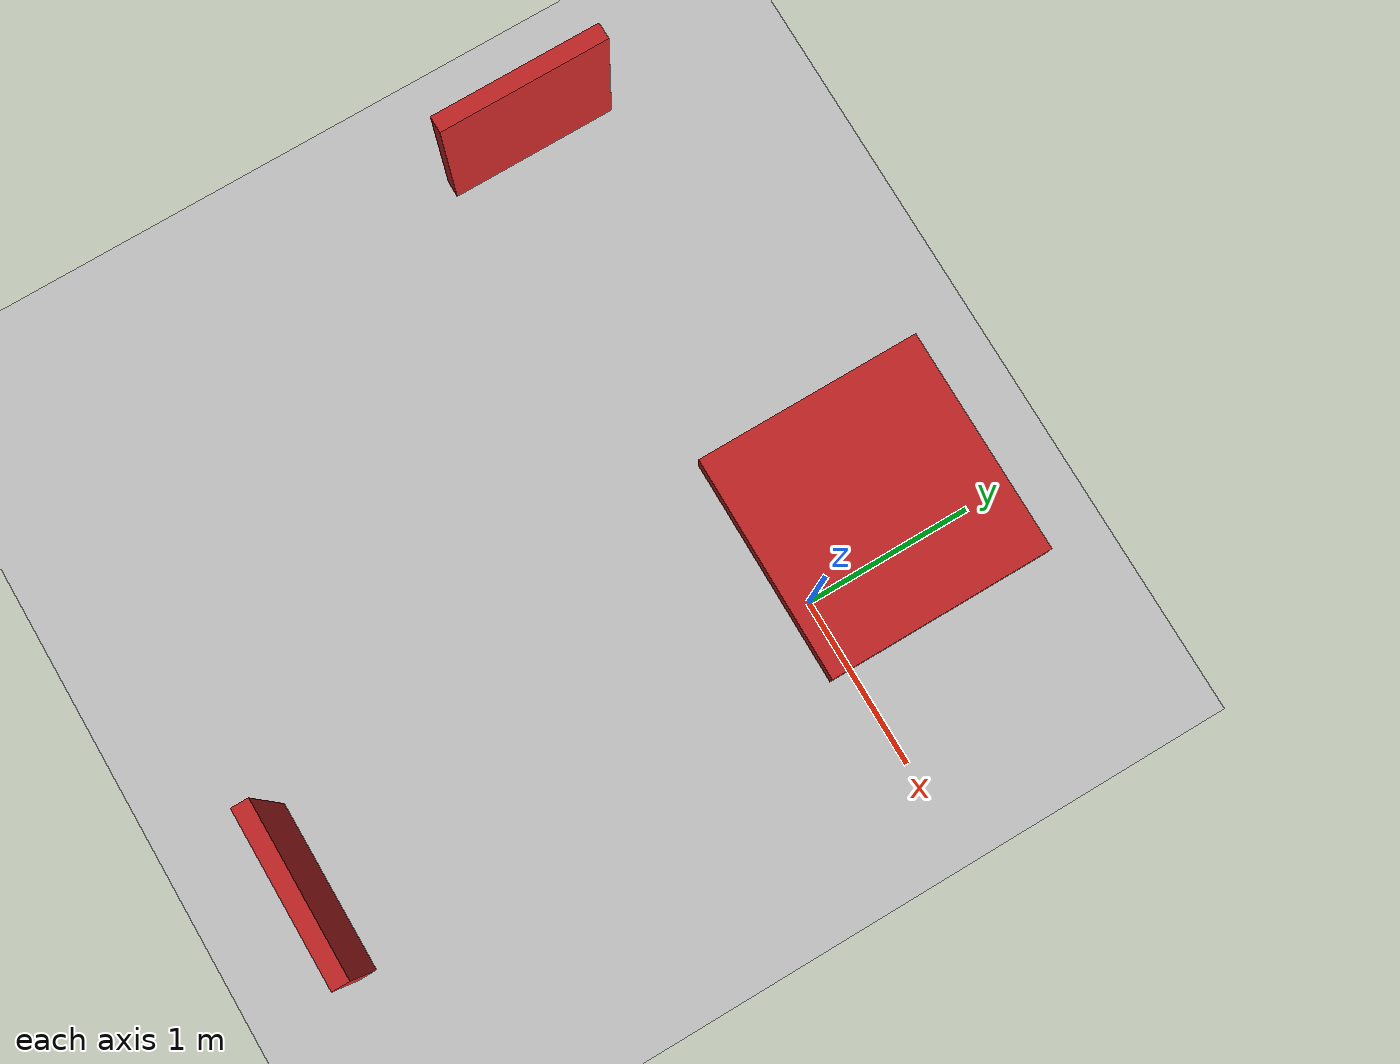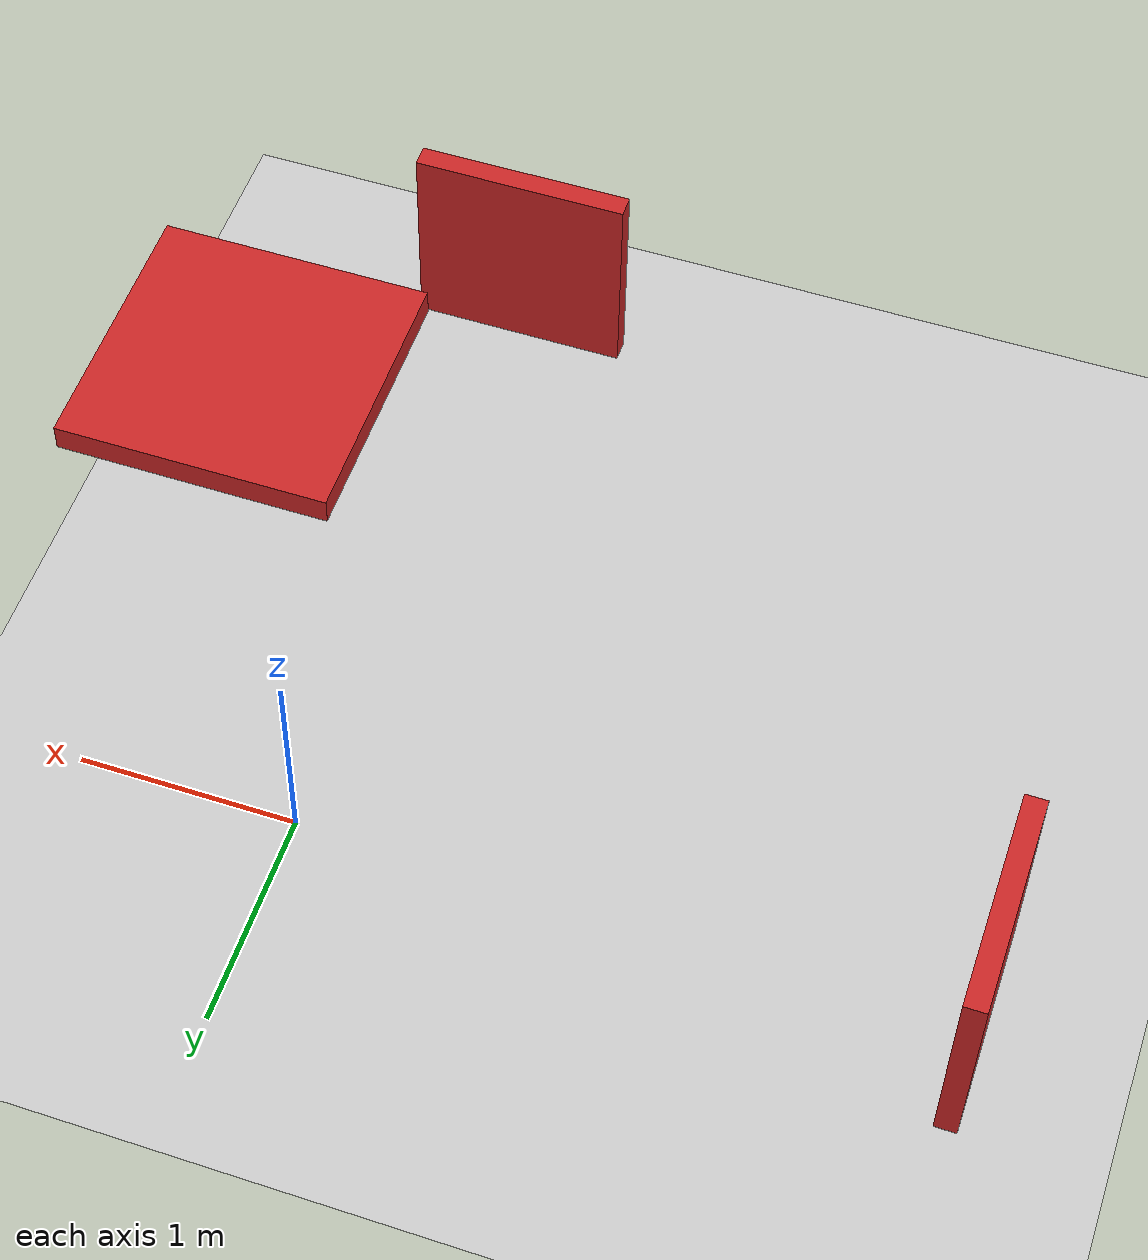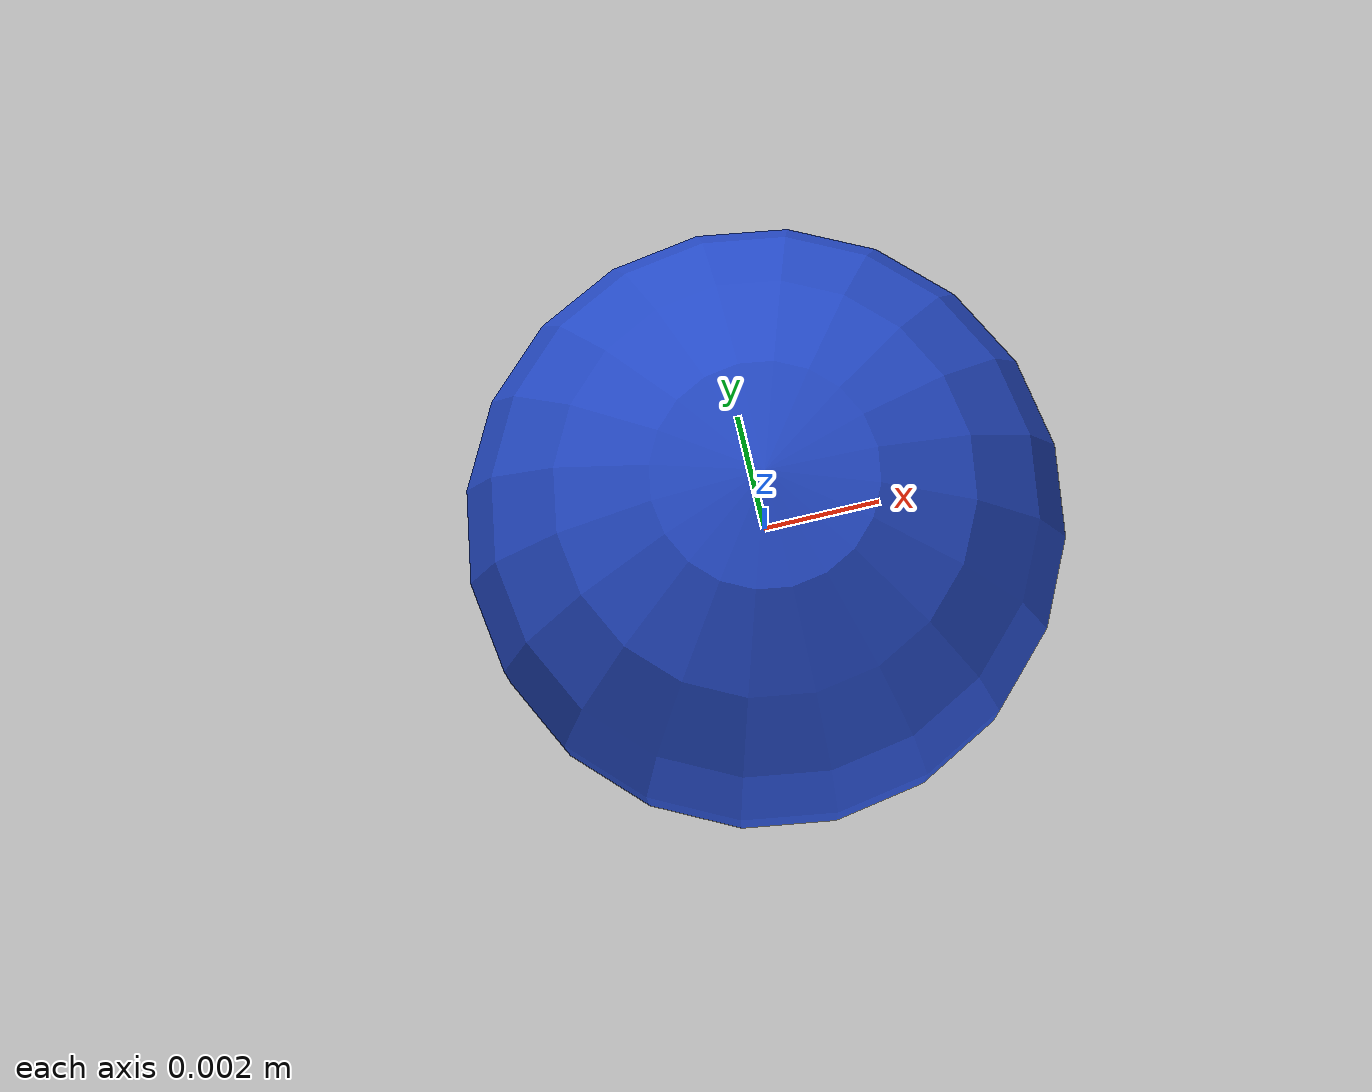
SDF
<?xml version="1.0" ?>
<sdf version="1.4">
  <world name="default">
    <include>
      <uri>model://ground_plane</uri>
    </include>

    <include>
      <uri>model://ground_plane</uri>
    </include>

    <include>
      <uri>model://particle_sphere</uri>
      <name>particle_sphere1</name>
      <pose>0 0 0 0 0 0</pose>
    </include>

    <include>
      <uri>model://particle_sphere</uri>
      <name>particle_sphere2</name>
      <pose>0 0 0 0 0 0</pose>
    </include>

    <include>
      <uri>model://particle_sphere</uri>
      <name>particle_sphere3</name>
      <pose>0 0 0 0 0 0</pose>
    </include>

    <include>
      <uri>model://particle_sphere</uri>
      <name>particle_sphere4</name>
      <pose>0 0 0 0 0 0</pose>
    </include>

    <include>
      <uri>model://particle_sphere</uri>
      <name>particle_sphere5</name>
      <pose>0 0 0 0 0 0</pose>
    </include>

    <include>
      <uri>model://particle_sphere</uri>
      <name>particle_sphere6</name>
      <pose>0 0 0 0 0 0</pose>
    </include>

    <include>
      <uri>model://particle_sphere</uri>
      <name>particle_sphere7</name>
      <pose>0 0 0 0 0 0</pose>
    </include>

    <include>
      <uri>model://particle_sphere</uri>
      <name>particle_sphere8</name>
      <pose>0 0 0 0 0 0</pose>
    </include>

    <include>
      <uri>model://particle_sphere</uri>
      <name>particle_sphere9</name>
      <pose>0 0 0 0 0 0</pose>
    </include>

    <include>
      <uri>model://particle_sphere</uri>
      <name>particle_sphere10</name>
      <pose>0 0 0 0 0 0</pose>
    </include>

    <include>
      <uri>model://particle_sphere</uri>
      <name>particle_sphere11</name>
      <pose>0 0 0 0 0 0</pose>
    </include>

    <include>
      <uri>model://particle_sphere</uri>
      <name>particle_sphere12</name>
      <pose>0 0 0 0 0 0</pose>
    </include>

        <include>
      <uri>model://particle_sphere</uri>
      <name>particle_sphere13</name>
      <pose>0 0 0 0 0 0</pose>
    </include>

    <include>
      <uri>model://particle_sphere</uri>
      <name>particle_sphere14</name>
      <pose>0 0 0 0 0 0</pose>
    </include>

    <include>
      <uri>model://particle_sphere</uri>
      <name>particle_sphere15</name>
      <pose>0 0 0 0 0 0</pose>
    </include>

    <include>
      <uri>model://particle_sphere</uri>
      <name>particle_sphere16</name>
      <pose>0 0 0 0 0 0</pose>
    </include>

    <include>
      <uri>model://particle_sphere</uri>
      <name>particle_sphere17</name>
      <pose>0 0 0 0 0 0</pose>
    </include>

    <include>
      <uri>model://particle_sphere</uri>
      <name>particle_sphere18</name>
      <pose>0 0 0 0 0 0</pose>
    </include>

    <include>
      <uri>model://particle_sphere</uri>
      <name>particle_sphere19</name>
      <pose>0 0 0 0 0 0</pose>
    </include>

    <include>
      <uri>model://particle_sphere</uri>
      <name>particle_sphere20</name>
      <pose>0 0 0 0 0 0</pose>
    </include>

    <include>
      <uri>model://particle_sphere</uri>
      <name>particle_sphere21</name>
      <pose>0 0 0 0 0 0</pose>
    </include>

    <include>
      <uri>model://particle_sphere</uri>
      <name>particle_sphere22</name>
      <pose>0 0 0 0 0 0</pose>
    </include>

    <include>
      <uri>model://particle_sphere</uri>
      <name>particle_sphere23</name>
      <pose>0 0 0 0 0 0</pose>
    </include>

    <include>
      <uri>model://particle_sphere</uri>
      <name>particle_sphere24</name>
      <pose>0 0 0 0 0 0</pose>
    </include>

        <include>
      <uri>model://particle_sphere</uri>
      <name>particle_sphere25</name>
      <pose>0 0 0 0 0 0</pose>
    </include>

    <include>
      <uri>model://particle_sphere</uri>
      <name>particle_sphere26</name>
      <pose>0 0 0 0 0 0</pose>
    </include>

    <include>
      <uri>model://particle_sphere</uri>
      <name>particle_sphere27</name>
      <pose>0 0 0 0 0 0</pose>
    </include>

    <include>
      <uri>model://particle_sphere</uri>
      <name>particle_sphere28</name>
      <pose>0 0 0 0 0 0</pose>
    </include>

    <include>
      <uri>model://particle_sphere</uri>
      <name>particle_sphere29</name>
      <pose>0 0 0 0 0 0</pose>
    </include>

    <include>
      <uri>model://particle_sphere</uri>
      <name>particle_sphere30</name>
      <pose>0 0 0 0 0 0</pose>
    </include>

    <include>
      <uri>model://particle_sphere</uri>
      <name>particle_sphere31</name>
      <pose>0 0 0 0 0 0</pose>
    </include>

    <include>
      <uri>model://particle_sphere</uri>
      <name>particle_sphere32</name>
      <pose>0 0 0 0 0 0</pose>
    </include>

    <include>
      <uri>model://particle_sphere</uri>
      <name>particle_sphere33</name>
      <pose>0 0 0 0 0 0</pose>
    </include>

    <include>
      <uri>model://particle_sphere</uri>
      <name>particle_sphere34</name>
      <pose>0 0 0 0 0 0</pose>
    </include>

    <include>
      <uri>model://particle_sphere</uri>
      <name>particle_sphere35</name>
      <pose>0 0 0 0 0 0</pose>
    </include>

    <include>
      <uri>model://particle_sphere</uri>
      <name>particle_sphere36</name>
      <pose>0 0 0 0 0 0</pose>
    </include>

        <include>
      <uri>model://particle_sphere</uri>
      <name>particle_sphere37</name>
      <pose>0 0 0 0 0 0</pose>
    </include>

    <include>
      <uri>model://particle_sphere</uri>
      <name>particle_sphere38</name>
      <pose>0 0 0 0 0 0</pose>
    </include>

    <include>
      <uri>model://particle_sphere</uri>
      <name>particle_sphere39</name>
      <pose>0 0 0 0 0 0</pose>
    </include>

    <include>
      <uri>model://particle_sphere</uri>
      <name>particle_sphere40</name>
      <pose>0 0 0 0 0 0</pose>
    </include>

    <include>
      <uri>model://particle_sphere</uri>
      <name>particle_sphere41</name>
      <pose>0 0 0 0 0 0</pose>
    </include>

    <include>
      <uri>model://particle_sphere</uri>
      <name>particle_sphere42</name>
      <pose>0 0 0 0 0 0</pose>
    </include>

    <include>
      <uri>model://particle_sphere</uri>
      <name>particle_sphere43</name>
      <pose>0 0 0 0 0 0</pose>
    </include>

    <include>
      <uri>model://particle_sphere</uri>
      <name>particle_sphere44</name>
      <pose>0 0 0 0 0 0</pose>
    </include>

    <include>
      <uri>model://particle_sphere</uri>
      <name>particle_sphere45</name>
      <pose>0 0 0 0 0 0</pose>
    </include>

    <include>
      <uri>model://particle_sphere</uri>
      <name>particle_sphere46</name>
      <pose>0 0 0 0 0 0</pose>
    </include>

    <include>
      <uri>model://particle_sphere</uri>
      <name>particle_sphere47</name>
      <pose>0 0 0 0 0 0</pose>
    </include>

    <include>
      <uri>model://particle_sphere</uri>
      <name>particle_sphere48</name>
      <pose>0 0 0 0 0 0</pose>
    </include>

        <include>
      <uri>model://particle_sphere</uri>
      <name>particle_sphere49</name>
      <pose>0 0 0 0 0 0</pose>
    </include>

    <include>
      <uri>model://particle_sphere</uri>
      <name>particle_sphere50</name>
      <pose>0 0 0 0 0 0</pose>
    </include>

    <include>
      <uri>model://particle_sphere</uri>
      <name>particle_sphere51</name>
      <pose>0 0 0 0 0 0</pose>
    </include>

    <include>
      <uri>model://particle_sphere</uri>
      <name>particle_sphere52</name>
      <pose>0 0 0 0 0 0</pose>
    </include>

    <include>
      <uri>model://particle_sphere</uri>
      <name>particle_sphere53</name>
      <pose>0 0 0 0 0 0</pose>
    </include>

    <include>
      <uri>model://particle_sphere</uri>
      <name>particle_sphere54</name>
      <pose>0 0 0 0 0 0</pose>
    </include>

    <include>
      <uri>model://particle_sphere</uri>
      <name>particle_sphere55</name>
      <pose>0 0 0 0 0 0</pose>
    </include>

    <include>
      <uri>model://particle_sphere</uri>
      <name>particle_sphere56</name>
      <pose>0 0 0 0 0 0</pose>
    </include>

    <include>
      <uri>model://particle_sphere</uri>
      <name>particle_sphere57</name>
      <pose>0 0 0 0 0 0</pose>
    </include>

    <include>
      <uri>model://particle_sphere</uri>
      <name>particle_sphere58</name>
      <pose>0 0 0 0 0 0</pose>
    </include>

    <include>
      <uri>model://particle_sphere</uri>
      <name>particle_sphere59</name>
      <pose>0 0 0 0 0 0</pose>
    </include>

    <include>
      <uri>model://particle_sphere</uri>
      <name>particle_sphere60</name>
      <pose>0 0 0 0 0 0</pose>
    </include>

        <include>
      <uri>model://particle_sphere</uri>
      <name>particle_sphere61</name>
      <pose>0 0 0 0 0 0</pose>
    </include>

    <include>
      <uri>model://particle_sphere</uri>
      <name>particle_sphere62</name>
      <pose>0 0 0 0 0 0</pose>
    </include>

    <include>
      <uri>model://particle_sphere</uri>
      <name>particle_sphere63</name>
      <pose>0 0 0 0 0 0</pose>
    </include>

    <include>
      <uri>model://particle_sphere</uri>
      <name>particle_sphere64</name>
      <pose>0 0 0 0 0 0</pose>
    </include>

    <include>
      <uri>model://particle_sphere</uri>
      <name>particle_sphere65</name>
      <pose>0 0 0 0 0 0</pose>
    </include>

    <include>
      <uri>model://particle_sphere</uri>
      <name>particle_sphere66</name>
      <pose>0 0 0 0 0 0</pose>
    </include>

    <include>
      <uri>model://particle_sphere</uri>
      <name>particle_sphere67</name>
      <pose>0 0 0 0 0 0</pose>
    </include>

    <include>
      <uri>model://particle_sphere</uri>
      <name>particle_sphere68</name>
      <pose>0 0 0 0 0 0</pose>
    </include>

    <include>
      <uri>model://particle_sphere</uri>
      <name>particle_sphere69</name>
      <pose>0 0 0 0 0 0</pose>
    </include>

    <include>
      <uri>model://particle_sphere</uri>
      <name>particle_sphere70</name>
      <pose>0 0 0 0 0 0</pose>
    </include>

    <include>
      <uri>model://particle_sphere</uri>
      <name>particle_sphere71</name>
      <pose>0 0 0 0 0 0</pose>
    </include>

    <include>
      <uri>model://particle_sphere</uri>
      <name>particle_sphere72</name>
      <pose>0 0 0 0 0 0</pose>
    </include>

        <include>
      <uri>model://particle_sphere</uri>
      <name>particle_sphere73</name>
      <pose>0 0 0 0 0 0</pose>
    </include>

    <include>
      <uri>model://particle_sphere</uri>
      <name>particle_sphere74</name>
      <pose>0 0 0 0 0 0</pose>
    </include>

    <include>
      <uri>model://particle_sphere</uri>
      <name>particle_sphere75</name>
      <pose>0 0 0 0 0 0</pose>
    </include>

    <include>
      <uri>model://particle_sphere</uri>
      <name>particle_sphere76</name>
      <pose>0 0 0 0 0 0</pose>
    </include>

    <include>
      <uri>model://particle_sphere</uri>
      <name>particle_sphere77</name>
      <pose>0 0 0 0 0 0</pose>
    </include>

    <include>
      <uri>model://particle_sphere</uri>
      <name>particle_sphere78</name>
      <pose>0 0 0 0 0 0</pose>
    </include>

    <include>
      <uri>model://particle_sphere</uri>
      <name>particle_sphere79</name>
      <pose>0 0 0 0 0 0</pose>
    </include>

    <include>
      <uri>model://particle_sphere</uri>
      <name>particle_sphere80</name>
      <pose>0 0 0 0 0 0</pose>
    </include>

    <include>
      <uri>model://particle_sphere</uri>
      <name>particle_sphere81</name>
      <pose>0 0 0 0 0 0</pose>
    </include>

    <include>
      <uri>model://particle_sphere</uri>
      <name>particle_sphere82</name>
      <pose>0 0 0 0 0 0</pose>
    </include>

    <include>
      <uri>model://particle_sphere</uri>
      <name>particle_sphere83</name>
      <pose>0 0 0 0 0 0</pose>
    </include>

    <include>
      <uri>model://particle_sphere</uri>
      <name>particle_sphere84</name>
      <pose>0 0 0 0 0 0</pose>
    </include>

        <include>
      <uri>model://particle_sphere</uri>
      <name>particle_sphere85</name>
      <pose>0 0 0 0 0 0</pose>
    </include>

    <include>
      <uri>model://particle_sphere</uri>
      <name>particle_sphere86</name>
      <pose>0 0 0 0 0 0</pose>
    </include>

    <include>
      <uri>model://particle_sphere</uri>
      <name>particle_sphere87</name>
      <pose>0 0 0 0 0 0</pose>
    </include>

    <include>
      <uri>model://particle_sphere</uri>
      <name>particle_sphere88</name>
      <pose>0 0 0 0 0 0</pose>
    </include>

    <include>
      <uri>model://particle_sphere</uri>
      <name>particle_sphere89</name>
      <pose>0 0 0 0 0 0</pose>
    </include>

    <include>
      <uri>model://particle_sphere</uri>
      <name>particle_sphere90</name>
      <pose>0 0 0 0 0 0</pose>
    </include>

    <include>
      <uri>model://particle_sphere</uri>
      <name>particle_sphere91</name>
      <pose>0 0 0 0 0 0</pose>
    </include>

    <include>
      <uri>model://particle_sphere</uri>
      <name>particle_sphere92</name>
      <pose>0 0 0 0 0 0</pose>
    </include>

    <include>
      <uri>model://particle_sphere</uri>
      <name>particle_sphere93</name>
      <pose>0 0 0 0 0 0</pose>
    </include>

    <include>
      <uri>model://particle_sphere</uri>
      <name>particle_sphere94</name>
      <pose>0 0 0 0 0 0</pose>
    </include>

    <include>
      <uri>model://particle_sphere</uri>
      <name>particle_sphere95</name>
      <pose>0 0 0 0 0 0</pose>
    </include>

    <include>
      <uri>model://particle_sphere</uri>
      <name>particle_sphere96</name>
      <pose>0 0 0 0 0 0</pose>
    </include>

        <include>
      <uri>model://particle_sphere</uri>
      <name>particle_sphere97</name>
      <pose>0 0 0 0 0 0</pose>
    </include>

    <include>
      <uri>model://particle_sphere</uri>
      <name>particle_sphere98</name>
      <pose>0 0 0 0 0 0</pose>
    </include>

    <include>
      <uri>model://particle_sphere</uri>
      <name>particle_sphere99</name>
      <pose>0 0 0 0 0 0</pose>
    </include>

    <include>
      <uri>model://particle_sphere</uri>
      <name>particle_sphere100</name>
      <pose>0 0 0 0 0 0</pose>
    </include>

    <include>
      <uri>model://sun</uri>
    </include>

    <include>
      <uri>model://testing_surface</uri>
      <name>testing_surface1</name>
      <pose>-3 0 0.5 0 1.57 0</pose>
    </include>

    <include>
      <uri>model://testing_surface</uri>
      <name>testing_surface1</name>
      <pose>0 -3 0.5 1.57 0 0</pose>
    </include>

    <include>
      <uri>model://testing_surface</uri>
      <name>testing_surface1</name>
      <pose>0 0 3.0 0 0 0</pose>
    </include>

    <joint name = "joint_to_world" type="fixed">
      <parent>world</parent>
      <child>testing_surface_link::link</child>
    </joint>

    <atmosphere type='adiabatic'/>
    <scene>
      <sky>
        <clouds>
          <speed>12</speed>
        </clouds>
      </sky>
    </scene>

    <physics name='default_physics' default='0' type='ode'>
      <max_step_size>0.001</max_step_size>
      <real_time_factor>1</real_time_factor>
      <real_time_update_rate>1000</real_time_update_rate>
    </physics>

    <!-- reference to your plugin -->
    <plugin name="particle_shooter_plugin" filename="libparticle_shooter_plugin.so">
      <reset_frequency>50.0</reset_frequency>
      <!-- Fast or slow shoot-->
      <x_axis_force>0.0</x_axis_force>
      <y_axis_force>-70.0</y_axis_force>
      <z_axis_force>0.0</z_axis_force>
      <x_origin>0.0</x_origin>
      <y_origin>0.0</y_origin>
      <z_origin>0.5</z_origin>
      <random_range>0.05</random_range>
      <!-- Range of source  -->
    </plugin>

  </world>
</sdf>

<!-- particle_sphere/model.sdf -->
<sdf version='1.4'>
  <model name="particle_sphere">
      <static>0</static>
      <link name='link'>
        <inertial>
          <mass>0.05</mass>

          <inertia>
            <ixx>0.0010</ixx>
            <ixy>0.000000</ixy>
            <ixz>0.000000</ixz>
            <iyy>0.0010</iyy>
            <iyz>0.000000</iyz>
            <izz>0.0010</izz>
          </inertia>
        </inertial>
        <collision name='collision'>
          <geometry>
            <sphere>
              <radius>0.005</radius>
            </sphere>
          </geometry>
          <surface>
            <friction>
              <ode>
                <mu>100.0</mu>
                <mu2>100.0</mu2>
              </ode>
            </friction>
            <contact>
              <ode>
                <kp>1000000.0</kp>
                <kd>100.0</kd>
                <!-- AVOID SLIP AFTER FALLING -->
                <max_vel>0.001</max_vel>
                <min_depth>0.0002</min_depth>
              </ode>
            </contact>
          </surface>
        </collision>
        <visual name='visual'>
          <geometry>
            <sphere>
              <radius>0.005</radius>
            </sphere>
          </geometry>
          <material>
            <script>
              <uri>file://media/materials/scripts/gazebo.material</uri>
              <name>Gazebo/Blue</name>
            </script>
          </material>
        </visual>
        <velocity_decay>
          <linear>0.000</linear>
          <angular>0.000</angular>
        </velocity_decay>
        <self_collide>0</self_collide>
        <kinematic>0</kinematic>
        <gravity>1</gravity>
      </link>
  </model>
</sdf>

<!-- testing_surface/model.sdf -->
<sdf version='1.4'>
  <model name='testing_surface'>
      <static>1</static>
      <pose frame=''>0 0 0 0 0 0</pose>
      <link name='testing_surface_link'>
        <inertial>
          <mass>0.1</mass>
          <inertia>
            <ixx>8.41666666667e-05</ixx>
            <ixy>0</ixy>
            <ixz>0</ixz>
            <iyy>3.08333333333e-05</iyy>
            <iyz>0</iyz>
            <izz>0.000113333333333</izz>
          </inertia>
        </inertial>
        <collision name='testing_surface_link_collision'>
          <geometry>
            <box>
              <size>1.0 1.0 0.1</size>
            </box>
          </geometry>
          <max_contacts>1000</max_contacts>
          <surface>
            <contact>
              <ode/>
            </contact>
            <bounce/>
            <friction>
              <torsional>
                <ode/>
              </torsional>
              <ode/>
            </friction>
          </surface>
        </collision>
        <visual name='testing_surface_link_visual'>
          <geometry>
            <box>
              <size>1.0 1.0 0.1</size>
            </box>
          </geometry>
          <material>
            <script>
              <uri>file://media/materials/scripts/gazebo.material</uri>
              <name>Gazebo/Red</name>
            </script>
          </material>
        </visual>
        <self_collide>0</self_collide>
        <kinematic>0</kinematic>
      </link>
    </model>
</sdf>
